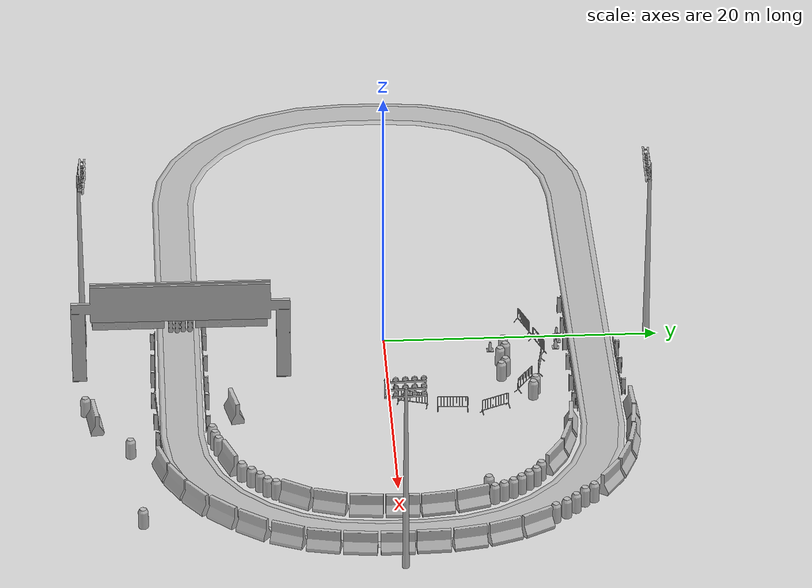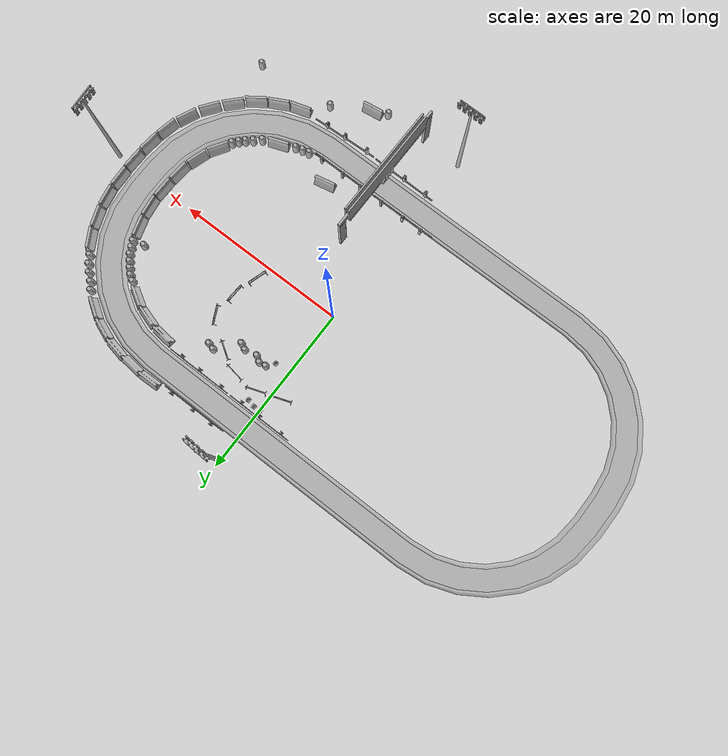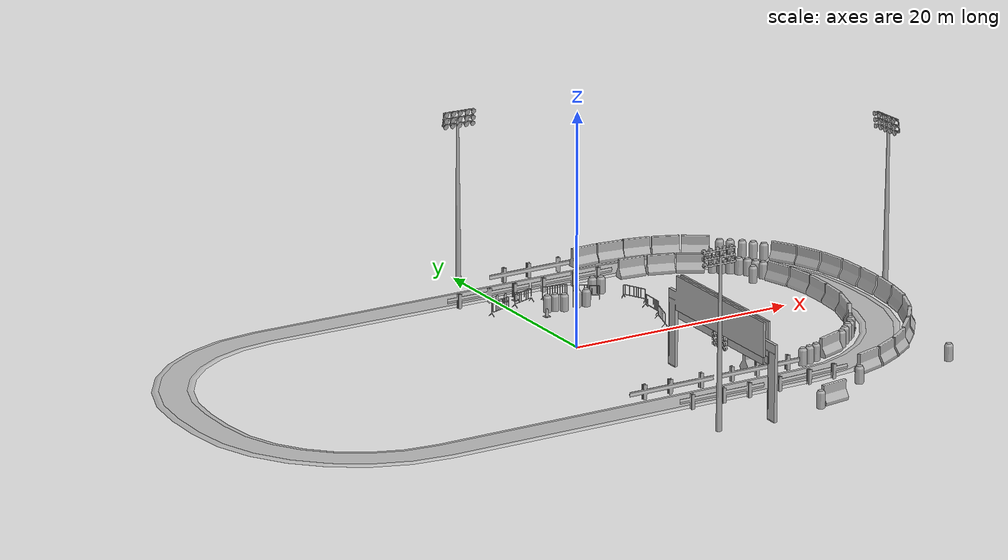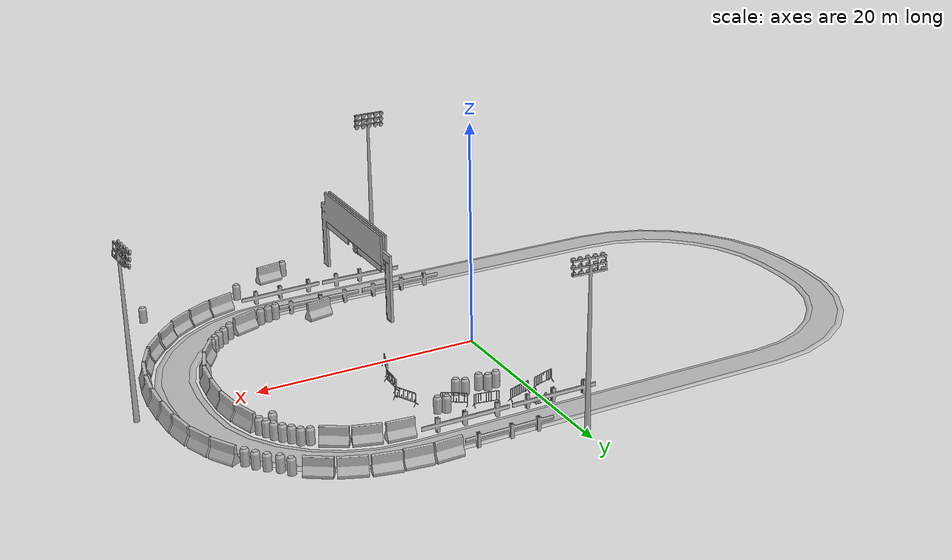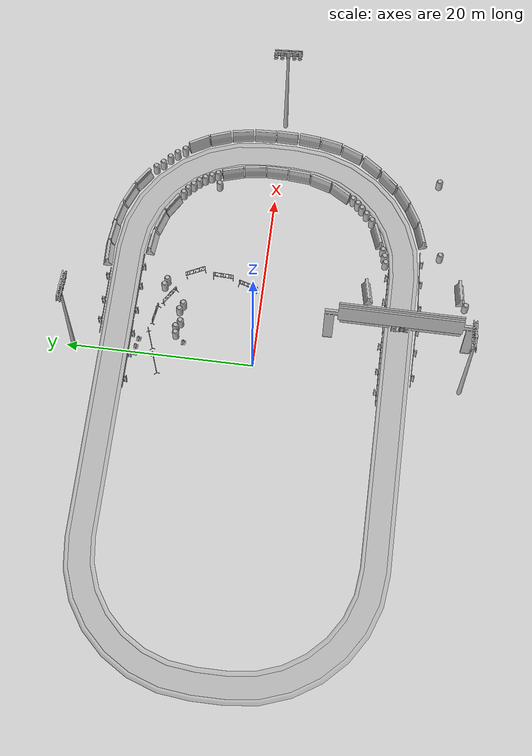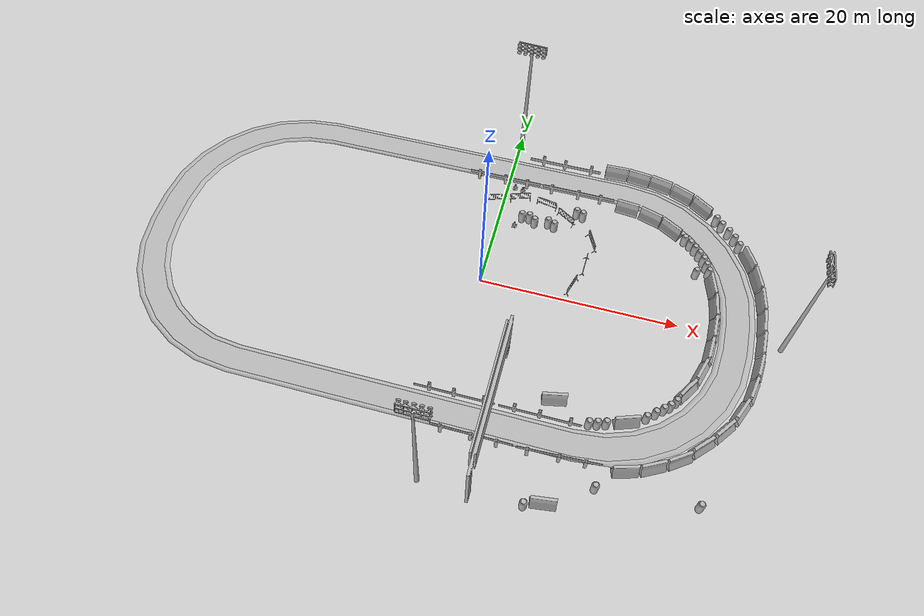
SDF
<sdf version="1.6">
 <world name="default">
  <model name="aws_robomaker_racetrack_Billboard_01">
   <include><uri>model://aws_robomaker_racetrack_Billboard_01</uri></include>
   <pose>4.32789 -14.8431 -2e-06 0 1e-06 1.56416</pose>
  </model>
  <model name="aws_robomaker_racetrack_CrashworthBucket_01_04">
   <include><uri>model://aws_robomaker_racetrack_CrashworthBucket_01</uri></include>
   <pose>2.35672 8.58743 0.054 0 0 0.094608</pose>
  </model>
  <model name="aws_robomaker_racetrack_CrashworthBucket_01_05">
   <include><uri>model://aws_robomaker_racetrack_CrashworthBucket_01</uri></include>
   <pose>3.14399 8.69292 0 0 -0 0.292667</pose>
  </model>
  <model name="aws_robomaker_racetrack_CrashworthBucket_01_06">
   <include><uri>model://aws_robomaker_racetrack_CrashworthBucket_01</uri></include>
   <pose>5.18867 8.56895 0 0 0 -0.026658</pose>
  </model>
  <model name="aws_robomaker_racetrack_CrashworthBucket_01_07">
   <include><uri>model://aws_robomaker_racetrack_CrashworthBucket_01</uri></include>
   <pose>5.89383 8.24239 0.054 0 0 0</pose>
  </model>
  <model name="aws_robomaker_racetrack_CrashworthBucket_01_08">
   <include><uri>model://aws_robomaker_racetrack_CrashworthBucket_01</uri></include>
   <pose>8.58056 10.3426 0.054 0 0 0</pose>
  </model>
  <model name="aws_robomaker_racetrack_CrashworthBucket_01_09">
   <include><uri>model://aws_robomaker_racetrack_CrashworthBucket_01</uri></include>
   <pose>7.88227 10.5539 0.054 0 0 0</pose>
  </model>
  <model name="aws_robomaker_racetrack_CrashworthBucket_01_10">
   <include><uri>model://aws_robomaker_racetrack_CrashworthBucket_01</uri></include>
   <pose>22.2917 13.5697 0 0 -0 0</pose>
  </model>
  <model name="aws_robomaker_racetrack_CrashworthBucket_01_11">
   <include><uri>model://aws_robomaker_racetrack_CrashworthBucket_01</uri></include>
   <pose>22.9018 12.8693 0.054 0 0 0</pose>
  </model>
  <model name="aws_robomaker_racetrack_CrashworthBucket_01_12">
   <include><uri>model://aws_robomaker_racetrack_CrashworthBucket_01</uri></include>
   <pose>22.2128 6.62693 0.054 0 0 0</pose>
  </model>
  <model name="aws_robomaker_racetrack_CrashworthBucket_01_13">
   <include><uri>model://aws_robomaker_racetrack_CrashworthBucket_01</uri></include>
   <pose>20.9847 6.29253 0 0 -0 0</pose>
  </model>
  <model name="aws_robomaker_racetrack_CrashworthBucket_01_14">
   <include><uri>model://aws_robomaker_racetrack_CrashworthBucket_01</uri></include>
   <pose>24.073 -17.9303 0.054 0 0 0</pose>
  </model>
  <model name="aws_robomaker_racetrack_CrashworthBucket_01_15">
   <include><uri>model://aws_robomaker_racetrack_CrashworthBucket_01</uri></include>
   <pose>20.8422 -8.59507 0.054 0 0 0.012499</pose>
  </model>
  <model name="aws_robomaker_racetrack_CrashworthBucket_01_16">
   <include><uri>model://aws_robomaker_racetrack_CrashworthBucket_01</uri></include>
   <pose>20.3649 -9.17417 0 0 -0 0.004768</pose>
  </model>
  <model name="aws_robomaker_racetrack_CrashworthBucket_01_17">
   <include><uri>model://aws_robomaker_racetrack_CrashworthBucket_01</uri></include>
   <pose>19.7995 -9.67862 0.054 0 0 -0.003254</pose>
  </model>
  <model name="aws_robomaker_racetrack_CrashworthBucket_01_18">
   <include><uri>model://aws_robomaker_racetrack_CrashworthBucket_01</uri></include>
   <pose>19.1471 -10.2467 0.054 0 0 0</pose>
  </model>
  <model name="aws_robomaker_racetrack_CrashworthBucket_01_19">
   <include><uri>model://aws_robomaker_racetrack_CrashworthBucket_01</uri></include>
   <pose>18.3999 -10.9106 0.054 0 0 0</pose>
  </model>
  <model name="aws_robomaker_racetrack_CrashworthBucket_01_22">
   <include><uri>model://aws_robomaker_racetrack_CrashworthBucket_01</uri></include>
   <pose>14.1427 -12.6734 0.054 0 0 0</pose>
  </model>
  <model name="aws_robomaker_racetrack_CrashworthBucket_01_23">
   <include><uri>model://aws_robomaker_racetrack_CrashworthBucket_01</uri></include>
   <pose>14.9254 -12.4456 0.054 0 0 0</pose>
  </model>
  <model name="aws_robomaker_racetrack_CrashworthBucket_01_25">
   <include><uri>model://aws_robomaker_racetrack_CrashworthBucket_01</uri></include>
   <pose>13.3868 -12.8508 0.054 0 0 0</pose>
  </model>
  <model name="aws_robomaker_racetrack_CrashworthBucket_01_26">
   <include><uri>model://aws_robomaker_racetrack_CrashworthBucket_01</uri></include>
   <pose>9.22311 -21.8198 0.054 0 0 0</pose>
  </model>
  <model name="aws_robomaker_racetrack_CrashworthBucket_01_28">
   <include><uri>model://aws_robomaker_racetrack_CrashworthBucket_01</uri></include>
   <pose>14.9648 -18.6736 0.054 0 0 0</pose>
  </model>
  <model name="aws_robomaker_racetrack_CrashworthBucket_01_29">
   <include><uri>model://aws_robomaker_racetrack_CrashworthBucket_01</uri></include>
   <pose>23.6827 12.1956 0.054 0 0 0</pose>
  </model>
  <model name="aws_robomaker_racetrack_CrashworthBucket_01_30">
   <include><uri>model://aws_robomaker_racetrack_CrashworthBucket_01</uri></include>
   <pose>24.3346 11.4874 0.054 0 0 0</pose>
  </model>
  <model name="aws_robomaker_racetrack_CrashworthBucket_01_31">
   <include><uri>model://aws_robomaker_racetrack_CrashworthBucket_01</uri></include>
   <pose>24.8882 10.6788 0.054 0 0 0</pose>
  </model>
  <model name="aws_robomaker_racetrack_CrashworthBucket_01_32">
   <include><uri>model://aws_robomaker_racetrack_CrashworthBucket_01</uri></include>
   <pose>20.5304 9.13561 0.054 0 0 -0.001449</pose>
  </model>
  <model name="aws_robomaker_racetrack_CrashworthBucket_01_33">
   <include><uri>model://aws_robomaker_racetrack_CrashworthBucket_01</uri></include>
   <pose>19.3714 10.0864 0.054 0 0 0</pose>
  </model>
  <model name="aws_robomaker_racetrack_CrashworthBucket_01_34">
   <include><uri>model://aws_robomaker_racetrack_CrashworthBucket_01</uri></include>
   <pose>20.0016 9.69426 0 0 0 -0.00182</pose>
  </model>
  <model name="aws_robomaker_racetrack_CrashworthBucket_01_35">
   <include><uri>model://aws_robomaker_racetrack_CrashworthBucket_01</uri></include>
   <pose>21.0478 8.57525 0.054 0 0 -0.000349</pose>
  </model>
  <model name="aws_robomaker_racetrack_CrashworthBucket_01_36">
   <include><uri>model://aws_robomaker_racetrack_CrashworthBucket_01</uri></include>
   <pose>21.5218 7.97169 0.054 0 0 0</pose>
  </model>
  <model name="aws_robomaker_racetrack_CrashworthBucket_01_37">
   <include><uri>model://aws_robomaker_racetrack_CrashworthBucket_01</uri></include>
   <pose>21.8874 7.29413 0.054 0 0 0</pose>
  </model>
  <model name="aws_robomaker_racetrack_CrashworthBucket_01_53">
   <include><uri>model://aws_robomaker_racetrack_CrashworthBucket_01</uri></include>
   <pose>3.7947 8.27498 0 0 0 -0.244875</pose>
  </model>
  <model name="aws_robomaker_racetrack_FenceMesh_01_00">
   <include><uri>model://aws_robomaker_racetrack_FenceMesh_01</uri></include>
   <pose>4.2331 -11.1761 5.05223 0 0 -0.006038</pose>
  </model>
  <model name="aws_robomaker_racetrack_FenceMesh_01_01">
   <include><uri>model://aws_robomaker_racetrack_FenceMesh_01</uri></include>
   <pose>4.16406 -18.6269 5.05223 0 0 -0.006038</pose>
  </model>
  <model name="aws_robomaker_racetrack_FenceMesh_01_02">
   <include><uri>model://aws_robomaker_racetrack_FenceMesh_01</uri></include>
   <pose>4.63223 -18.6067 5.05223 0 0 -0.006038</pose>
  </model>
  <model name="aws_robomaker_racetrack_FenceMesh_01_03">
   <include><uri>model://aws_robomaker_racetrack_FenceMesh_01</uri></include>
   <pose>4.67467 -11.1966 5.05223 0 0 -0.006038</pose>
  </model>
  <model name="aws_robomaker_racetrack_Fence_01_00">
   <include><uri>model://aws_robomaker_racetrack_Fence_01</uri></include>
   <pose>7.552996 13.158695 0 0 0 -1.57272</pose>
  </model>
  <model name="aws_robomaker_racetrack_Fence_01_01">
   <include><uri>model://aws_robomaker_racetrack_Fence_01</uri></include>
   <pose>-0.500271 13.158695 0 0 0 -1.57272</pose>
  </model>
  <model name="aws_robomaker_racetrack_Fence_01_06">
   <include><uri>model://aws_robomaker_racetrack_Fence_01</uri></include>
   <pose>3.247635 -16.899557 0.054  0 0 -1.581650</pose>
  </model>
  <model name="aws_robomaker_racetrack_Fence_01_07">
   <include><uri>model://aws_robomaker_racetrack_Fence_01</uri></include>
   <pose>11.364270 -16.813890 0.054  0.0 0.0 -1.525504</pose>
  </model>
  <model name="aws_robomaker_racetrack_Fence_01_10">
   <include><uri>model://aws_robomaker_racetrack_Fence_01</uri></include>
   <pose>0.720398 -13.134610 0.054671 0 -0 1.57158</pose>
  </model>
  <model name="aws_robomaker_racetrack_Fence_01_11">
   <include><uri>model://aws_robomaker_racetrack_Fence_01</uri></include>
   <pose>8.89898 -13.134610 0.054638 0.0 0.0 1.572679</pose>
  </model>
  <model name="aws_robomaker_racetrack_Fence_01_15">
   <include><uri>model://aws_robomaker_racetrack_Fence_01</uri></include>
   <pose>5.475008 16.818918 0.054  0 -0 1.57158</pose>
  </model>
  <model name="aws_robomaker_racetrack_Fence_02_01">
   <include><uri>model://aws_robomaker_racetrack_Fence_02</uri></include>
   <pose>9.06357 1.626 0 0 0 -0.300407</pose>
  </model>
  <model name="aws_robomaker_racetrack_Fence_02_05">
   <include><uri>model://aws_robomaker_racetrack_Fence_02</uri></include>
   <pose>4.57205 11.1353 0 0 0 -1.73608</pose>
  </model>
  <model name="aws_robomaker_racetrack_Fence_02_06">
   <include><uri>model://aws_robomaker_racetrack_Fence_02</uri></include>
   <pose>6.8958583 9.887979 0 0 0 -2.140475</pose>
  </model>
  <model name="aws_robomaker_racetrack_Fence_02_07">
   <include><uri>model://aws_robomaker_racetrack_Fence_02</uri></include>
   <pose>1.60246 11.2143 0 0 -0 1.90339</pose>
  </model>
  <model name="aws_robomaker_racetrack_Fence_02_08">
   <include><uri>model://aws_robomaker_racetrack_Fence_02</uri></include>
   <pose>-1.13 10.3272 0 0 -0 1.90339</pose>
  </model>
  <model name="aws_robomaker_racetrack_Fence_02_10">
   <include><uri>model://aws_robomaker_racetrack_Fence_02</uri></include>
   <pose>9.89165 4.45225 0 0 0 -0.045392</pose>
  </model>
  <model name="aws_robomaker_racetrack_Fence_02_11">
   <include><uri>model://aws_robomaker_racetrack_Fence_02</uri></include>
   <pose>10.0686 7.48939 0 0 -0 0.450699</pose>
  </model>
  <model name="aws_robomaker_racetrack_RaceStartLight_01_00">
   <include><uri>model://aws_robomaker_racetrack_RaceStartLight_01</uri></include>
   <pose>4.13359 -14.1692 5.08709 0 -0 0</pose>
  </model>
  <model name="aws_robomaker_racetrack_RaceStartLight_01_01">
   <include><uri>model://aws_robomaker_racetrack_RaceStartLight_01</uri></include>
   <pose>4.14665 -14.6522 5.08709 0 -0 0</pose>
  </model>
  <model name="aws_robomaker_racetrack_RaceStartLight_01_02">
   <include><uri>model://aws_robomaker_racetrack_RaceStartLight_01</uri></include>
   <pose>4.21676 -15.0918 5.08709 0 -0 0</pose>
  </model>
  <model name="aws_robomaker_racetrack_RaceStartLight_01_03">
   <include><uri>model://aws_robomaker_racetrack_RaceStartLight_01</uri></include>
   <pose>4.17594 -15.5526 5.08709 0 -0 0</pose>
  </model>
  <model name="aws_robomaker_racetrack_StonePier_01_05">
   <include><uri>model://aws_robomaker_racetrack_StonePier_01</uri></include>
   <pose>11.0892 17.2043 0.054 0 -0.0 0.029389</pose>
  </model>
  <model name="aws_robomaker_racetrack_StonePier_01_06">
   <include><uri>model://aws_robomaker_racetrack_StonePier_01</uri></include>
   <pose>13.5633 17.1121 0.054 0 -0.0 -0.108086</pose>
  </model>
  <model name="aws_robomaker_racetrack_StonePier_01_07">
   <include><uri>model://aws_robomaker_racetrack_StonePier_01</uri></include>
   <pose>16.0013 16.8104 0.054 0 -0.0 -0.206147</pose>
  </model>
  <model name="aws_robomaker_racetrack_StonePier_01_08">
   <include><uri>model://aws_robomaker_racetrack_StonePier_01</uri></include>
   <pose>18.4263 16.0384 0.054 0 -0.0 -0.379591</pose>
  </model>
  <model name="aws_robomaker_racetrack_StonePier_01_09">
   <include><uri>model://aws_robomaker_racetrack_StonePier_01</uri></include>
   <pose>17.8323 11.1467 0.054 0 -0.0 -0.536699</pose>
  </model>
  <model name="aws_robomaker_racetrack_StonePier_01_10">
   <include><uri>model://aws_robomaker_racetrack_StonePier_01</uri></include>
   <pose>22.7563 5.03589 0.054 0 -0.0 -1.28348</pose>
  </model>
  <model name="aws_robomaker_racetrack_StonePier_01_11">
   <include><uri>model://aws_robomaker_racetrack_StonePier_01</uri></include>
   <pose>23.2964 2.57509 0.054 -0 -0.0 -1.43498</pose>
  </model>
  <model name="aws_robomaker_racetrack_StonePier_01_12">
   <include><uri>model://aws_robomaker_racetrack_StonePier_01</uri></include>
   <pose>23.4326 0.10745 0.054 -0 -0.0 -1.58404</pose>
  </model>
  <model name="aws_robomaker_racetrack_StonePier_01_13">
   <include><uri>model://aws_robomaker_racetrack_StonePier_01</uri></include>
   <pose>23.2774 -2.40527 0.054 0 -0.0 -1.65922</pose>
  </model>
  <model name="aws_robomaker_racetrack_StonePier_01_14">
   <include><uri>model://aws_robomaker_racetrack_StonePier_01</uri></include>
   <pose>22.705 -4.89186 0.054 -0 -0.0 -1.88566</pose>
  </model>
  <model name="aws_robomaker_racetrack_StonePier_01_15">
   <include><uri>model://aws_robomaker_racetrack_StonePier_01</uri></include>
   <pose>21.6688 -7.19526 0.054 0 -0.0 -2.13625</pose>
  </model>
  <model name="aws_robomaker_racetrack_StonePier_01_16">
   <include><uri>model://aws_robomaker_racetrack_StonePier_01</uri></include>
   <pose>28.1211 -0.475719 0.054 0 -0.0 -1.59506</pose>
  </model>
  <model name="aws_robomaker_racetrack_StonePier_01_17">
   <include><uri>model://aws_robomaker_racetrack_StonePier_01</uri></include>
   <pose>16.7061 -11.7058 0.054 -0 -0.0 -2.7953</pose>
  </model>
  <model name="aws_robomaker_racetrack_StonePier_01_18">
   <include><uri>model://aws_robomaker_racetrack_StonePier_01</uri></include>
   <pose>28.0027 -3.03906 0.054 0 -0.0 -1.68291</pose>
  </model>
  <model name="aws_robomaker_racetrack_StonePier_01_19">
   <include><uri>model://aws_robomaker_racetrack_StonePier_01</uri></include>
   <pose>9.84486 -11.2119 0.054 0 -0.0 -2.93657</pose>
  </model>
  <model name="aws_robomaker_racetrack_StonePier_01_20">
   <include><uri>model://aws_robomaker_racetrack_StonePier_01</uri></include>
   <pose>10.8625 -21.1556 0.054 -0 -0.0 0.135159</pose>
  </model>
  <model name="aws_robomaker_racetrack_StonePier_01_21">
   <include><uri>model://aws_robomaker_racetrack_StonePier_01</uri></include>
   <pose>17.2914 -16.4156 0.054 0 -0.0 0.298911</pose>
  </model>
  <model name="aws_robomaker_racetrack_StonePier_01_22">
   <include><uri>model://aws_robomaker_racetrack_StonePier_01</uri></include>
   <pose>19.6208 -15.4615 0.054 0 -0.0 0.489077</pose>
  </model>
  <model name="aws_robomaker_racetrack_StonePier_01_23">
   <include><uri>model://aws_robomaker_racetrack_StonePier_01</uri></include>
   <pose>21.7939 -14.1476 0.054 0 -0.0 0.61668</pose>
  </model>
  <model name="aws_robomaker_racetrack_StonePier_01_24">
   <include><uri>model://aws_robomaker_racetrack_StonePier_01</uri></include>
   <pose>23.6698 -12.3608 0.054 0 -0.0 0.810318</pose>
  </model>
  <model name="aws_robomaker_racetrack_StonePier_01_25">
   <include><uri>model://aws_robomaker_racetrack_StonePier_01</uri></include>
   <pose>25.3929 -10.3347 0.054 -0 -0.0 0.931507</pose>
  </model>
  <model name="aws_robomaker_racetrack_StonePier_01_26">
   <include><uri>model://aws_robomaker_racetrack_StonePier_01</uri></include>
   <pose>27.7466 4.53211 0.054 0 -0.0 1.75246</pose>
  </model>
  <model name="aws_robomaker_racetrack_StonePier_01_27">
   <include><uri>model://aws_robomaker_racetrack_StonePier_01</uri></include>
   <pose>27.0691 6.99271 0.054 0 -0.0 1.91654</pose>
  </model>
  <model name="aws_robomaker_racetrack_StonePier_01_28">
   <include><uri>model://aws_robomaker_racetrack_StonePier_01</uri></include>
   <pose>26.0366 9.29805 0.054 0 -0.0 2.08782</pose>
  </model>
  <model name="aws_robomaker_racetrack_StonePier_01_29">
   <include><uri>model://aws_robomaker_racetrack_StonePier_01</uri></include>
   <pose>26.7385 -7.99231 0.054 -0 -0.0 1.16098</pose>
  </model>
  <model name="aws_robomaker_racetrack_StonePier_01_30">
   <include><uri>model://aws_robomaker_racetrack_StonePier_01</uri></include>
   <pose>27.5962 -5.54706 0.054 0 -0.0 1.36231</pose>
  </model>
  <model name="aws_robomaker_racetrack_StonePier_01_31">
   <include><uri>model://aws_robomaker_racetrack_StonePier_01</uri></include>
   <pose>28.0314 1.9989 0.054 0 -0.0 -1.53351</pose>
  </model>
  <model name="aws_robomaker_racetrack_StonePier_01_32">
   <include><uri>model://aws_robomaker_racetrack_StonePier_01</uri></include>
   <pose>20.6714 14.8473 0.054 0 -0.0 -0.587598</pose>
  </model>
  <model name="aws_robomaker_racetrack_StonePier_01_33">
   <include><uri>model://aws_robomaker_racetrack_StonePier_01</uri></include>
   <pose>12.9654 12.6879 0.054 0 -0.0 -0.096781</pose>
  </model>
  <model name="aws_robomaker_racetrack_StonePier_01_34">
   <include><uri>model://aws_robomaker_racetrack_StonePier_01</uri></include>
   <pose>15.5357 12.1477 0.054 -0 0.00036 -0.29956</pose>
  </model>
  <model name="aws_robomaker_racetrack_Track_05_00">
   <include><uri>model://aws_robomaker_racetrack_Track_05</uri></include>
   <pose>0 0 0.051 0 -0 0</pose>
  </model>
  <model name="aws_robomaker_racetrack_TrafficCone_01_05">
   <include><uri>model://aws_robomaker_racetrack_TrafficCone_01</uri></include>
   <pose>1.63274 12.4879 0 0 -0 0</pose>
  </model>
  <model name="aws_robomaker_racetrack_TrafficCone_01_06">
   <include><uri>model://aws_robomaker_racetrack_TrafficCone_01</uri></include>
   <pose>0.741449 12.6798 0 0 -0 0</pose>
  </model>
  <model name="aws_robomaker_racetrack_TrafficCone_01_07">
   <include><uri>model://aws_robomaker_racetrack_TrafficCone_01</uri></include>
   <pose>-0.041804 12.6793 0 0 -0 0</pose>
  </model>
  <model name="aws_robomaker_racetrack_TrafficCone_01_13">
   <include><uri>model://aws_robomaker_racetrack_TrafficCone_01</uri></include>
   <pose>1.78217 7.69024 0 0 -0 0</pose>
  </model>
  <model name="aws_robomaker_racetrack_Light_01_00">
   <include><uri>model://aws_robomaker_racetrack_Light_01</uri></include>
   <pose>-0.355802 -21.7691 0 0 -0 0</pose>
  </model>
  <model name="aws_robomaker_racetrack_Light_01_01">
   <include><uri>model://aws_robomaker_racetrack_Light_01</uri></include>
   <pose>0.041158 19.0887 0 0 -0 3.09146</pose>
  </model>
  <model name="aws_robomaker_racetrack_Light_01_02">
   <include><uri>model://aws_robomaker_racetrack_Light_01</uri></include>
   <pose>29.8469 -0.049215 0 0 -0 1.63215</pose>
  </model>
  <model name="ground_plane">
   <pose>0 0 -1 0 -0 0</pose>
   <scale>1 1 1</scale>
   <link name="link">
    <pose>0 0 -1 0 -0 0</pose>
    <velocity>0 0 0 0 -0 0</velocity>
    <acceleration>0 0 0 0 -0 0</acceleration>
   </link>
  </model>
 </world>
</sdf>
